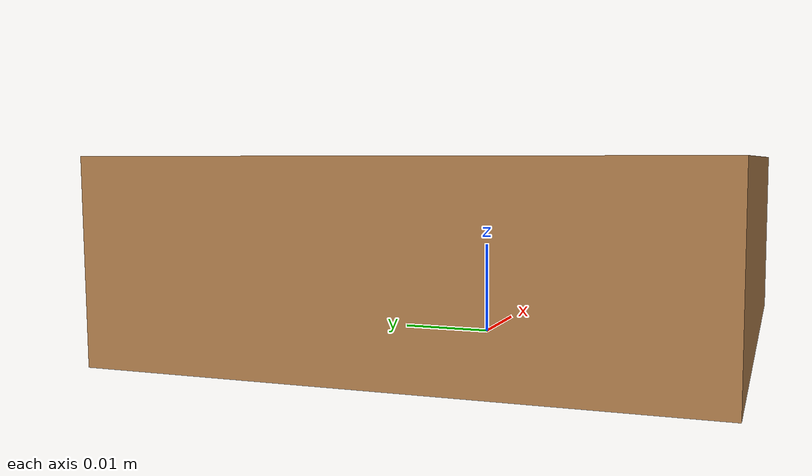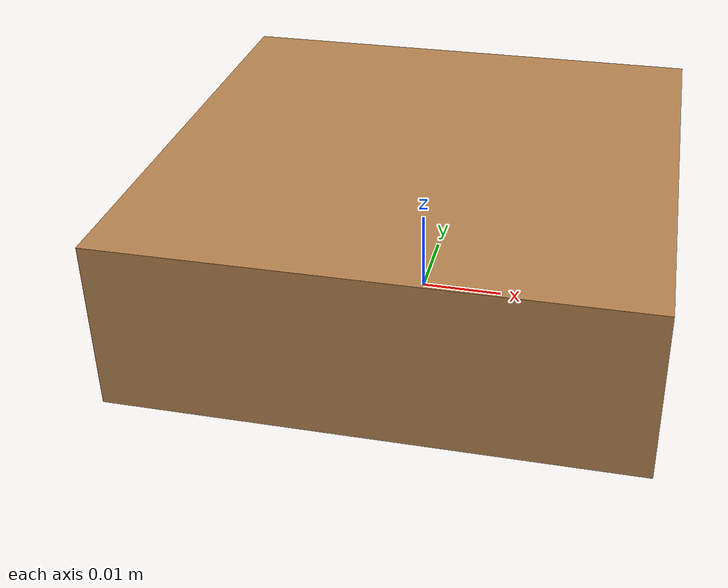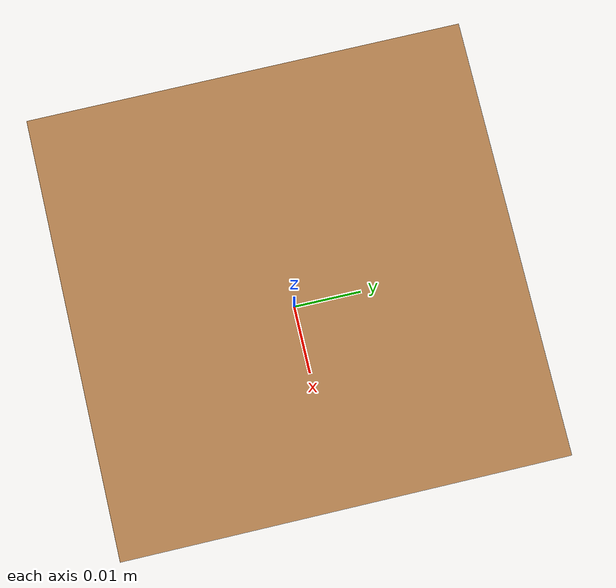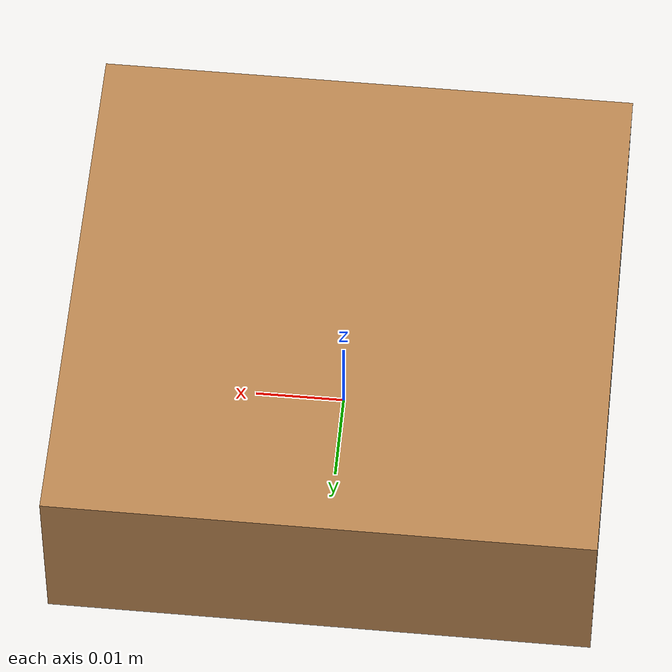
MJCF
<mujoco>
    <compiler angle="radian" inertiafromgeom="auto"/>

    <asset>

        <texture file="../textures/table_light_wood.png" type="2d" name="tex-wood"/>
        <material name="wood_material" reflectance="0.3" shininess="0.2" specular="0.1" texrepeat="1 1" texture="tex-wood" texuniform="true"/>

        <material name="wood_color" rgba="0.6 0.4 0.2 1" />
    </asset>

    <worldbody>

        <body pos="0 0 0.01">
            <body name="object">

                <inertial pos="0 0 0" mass="0.2" diaginertia="0.001 0.001 0.0001"/>

                <geom type="box" size="0.03 0.03 0.01"
                      material="wood_material"
                      group="0"
                      friction="0.8 0.3 0.1"
                      solimp="0.998 0.998 0.001"
                      solref="0.001 1"/>

                <geom type="box" size="0.03 0.03 0.01"
                      material="wood_material"
                      group="1"
                      conaffinity="0"
                      contype="0"/>
            </body>

            <site rgba="0 0 0 0" size="0.0025" pos="0 0 -0.01" name="bottom_site" />
            <site rgba="0 0 0 0" size="0.0025" pos="0 0 0.01" name="top_site" />
            <site rgba="0 0 0 0" size="0.0025" pos="0.03 0 0" name="horizontal_radius_site" />
        </body>
    </worldbody>
</mujoco>
